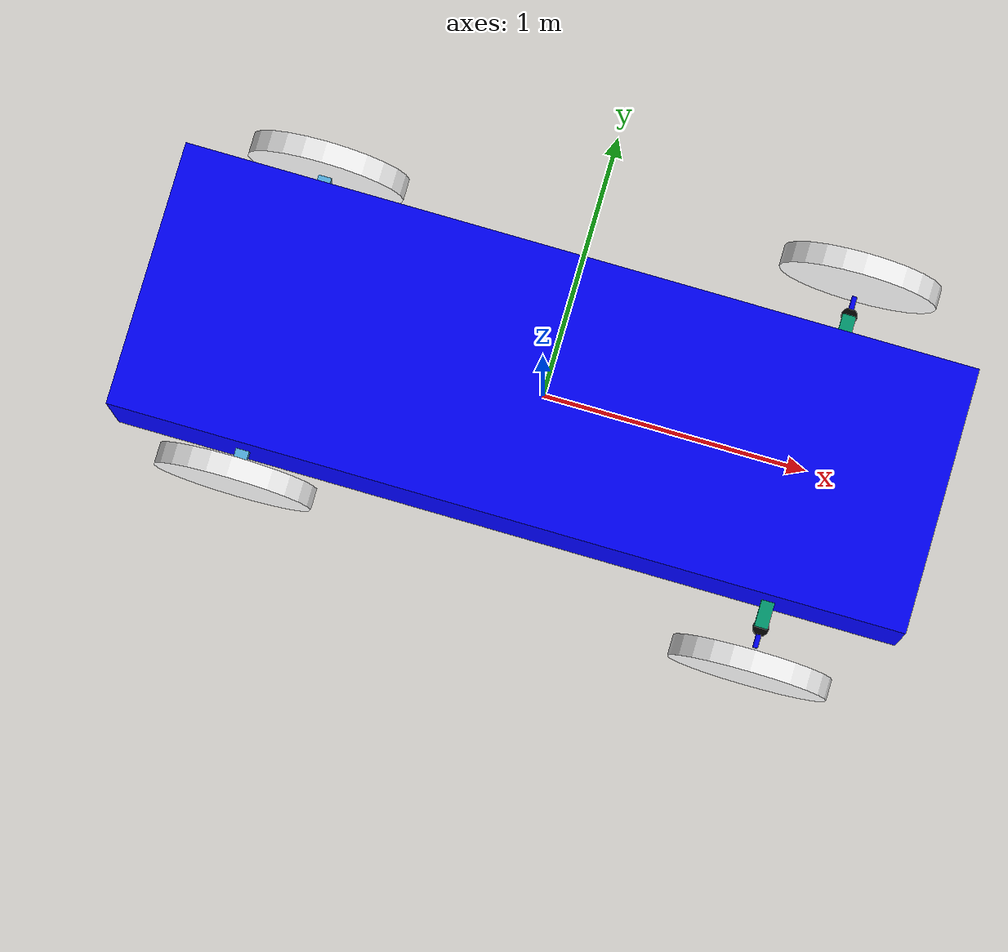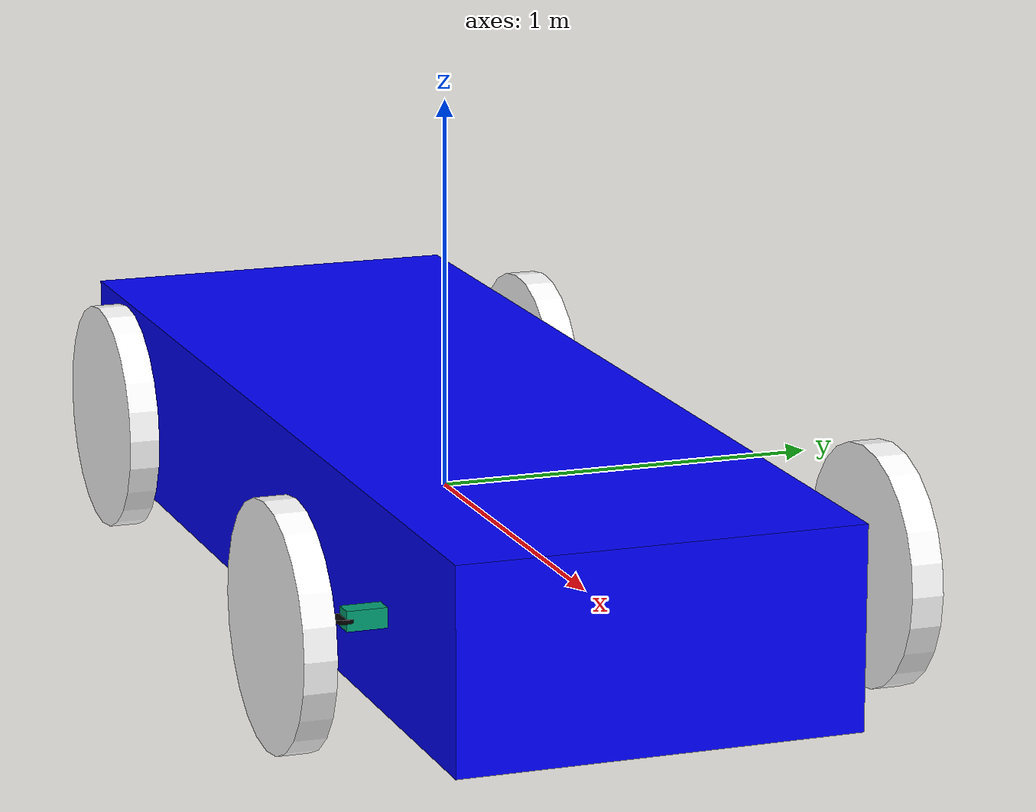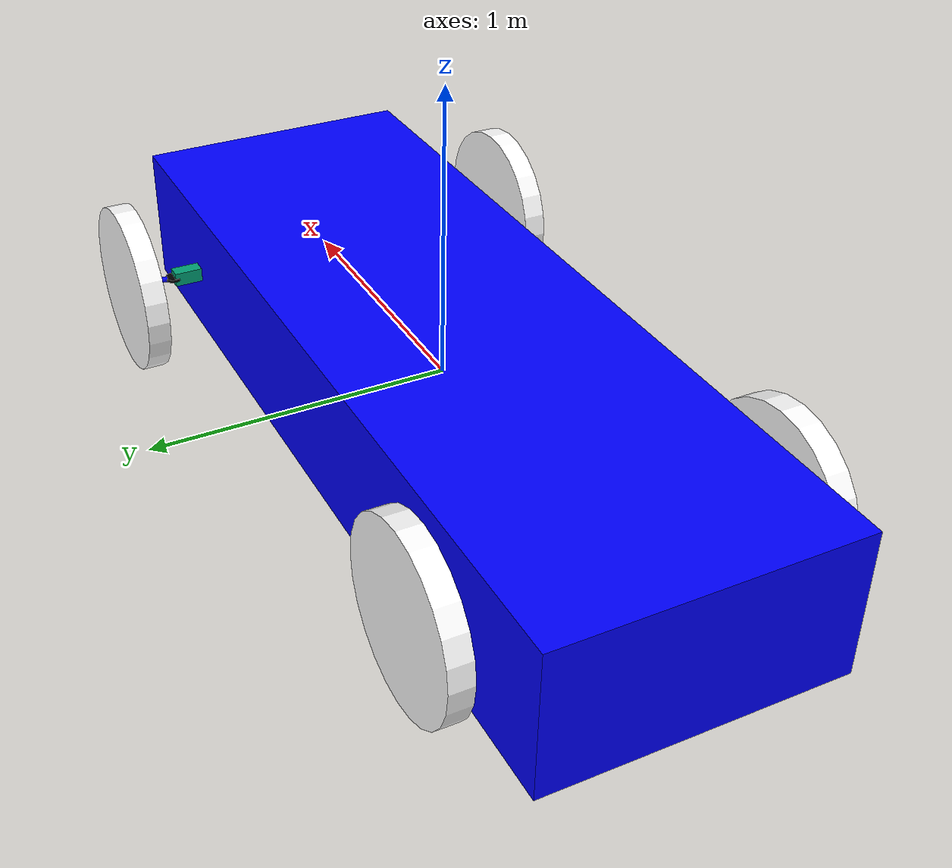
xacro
<?xml version="1.0"?>
<robot name="evrim4" xmlns:xacro="http://ros.org/wiki/xacro">

											<!-- DEGISKENLER -->

<xacro:property name="uzunluk" value="3.0" />
<xacro:property name="genislik" value="1.0" />
<xacro:property name="yukseklik" value="0.5" />
<xacro:property name="ta_uzunluk" value="0.05" /> <!-- Tasiyici uzunluk degeri -->
<xacro:property name="ta_genislik" value="1.2" />
<xacro:property name="ta_yukseklik" value="0.05" />
<xacro:property name="k_uzunluk" value="0.01" /> <!-- kramer uzunluk degeri -->
<xacro:property name="k_radius" value="0.03" />
<xacro:property name="te_uzunluk" value="0.08" />
<xacro:property name="te_radius" value="0.3" /> <!-- teker radius degeri -->
<xacro:property name="pi" value="3.1415" />

													<!-- RENKLER -->
	<material name="mavi">
		<color rgba="0 0 1 1"/>
	</material>
	<material name="siyah">
		<color rgba="1 1 1 1"/>
	</material>
	<material name="beyaz">
		<color rgba="0 0 0 1"/>
	</material>
												<!-- AGIRLIK GIRDISI -->
  <xacro:macro name="agirlik" params="mass">
    <inertial>
      <mass value="${mass}" />
      <inertia ixx="1.0" ixy="0.0" ixz="0.0" iyy="1.0" iyz="0.0" izz="1.0" />
    </inertial>
  </xacro:macro>

												<!-- ANA GOVDE -->

	<link name="ana_govde">
		<visual>
			<geometry>
				<box size="${uzunluk} ${genislik} ${yukseklik}"/>
			</geometry>
			<material name="mavi"/>
		</visual>
		<collision>
			<geometry>
				<box size="${uzunluk} ${genislik} ${yukseklik}"/>
			</geometry>
		</collision>
	  <xacro:agirlik mass="10"/>
	</link>
												<!-- ARKA TASIYICI -->
	<link name="arka_tasiyici">
		<visual>
			<geometry>
				<box size="${ta_uzunluk} ${ta_genislik} ${ta_yukseklik}"/>
			</geometry>
		</visual>
		<collision>
			<geometry>
				<box size="${ta_uzunluk} ${ta_genislik} ${ta_yukseklik}"/>
			</geometry>
		</collision>
	  <xacro:agirlik mass="3"/>
	</link>

	<joint name="arka_tasiyici_joint" type="fixed">
		<parent link="ana_govde"/>
		<child link="arka_tasiyici"/>
		<origin xyz="-1.0 0 -0.008"/>
	</joint>
												<!-- ON TASIYICI -->
	<link name="on_tasiyici">
		<visual>
			<geometry>
				<box size="${ta_uzunluk} ${ta_genislik} ${ta_yukseklik}"/>
			</geometry>
		</visual>
		<collision>
			<geometry>
				<box size="${ta_uzunluk} ${ta_genislik} ${ta_yukseklik}"/>
			</geometry>
		</collision>
	  <xacro:agirlik mass="3"/>
	</link>

	<joint name="on_tasiyici_joint" type="fixed">
		<parent link="ana_govde"/>
		<child link="on_tasiyici"/>
		<origin xyz="1.0 0 -0.008"/>
	</joint>
												<!-- ARKA TEKERLEK -->
														<!--  arka/on ,sol/sag, sol/sag konum degeri-->
  <xacro:macro name="teker" params="prefix suffix reflect">
    <link name="${prefix}_${suffix}_teker">
      <visual>
        <origin xyz="0 0 0" rpy="0 ${pi/2} ${pi/2}" />
        <geometry>
          <cylinder radius="${te_radius}" length="${te_uzunluk}"/>
        </geometry>
        <material name="siyah"/>
      </visual>
      <collision>
        <origin xyz="0 0 0" rpy="0 ${pi/2} ${pi/2}" />
        <geometry>
          <cylinder radius="${te_radius}" length="${te_uzunluk}"/>
        </geometry>
      </collision>
      <xacro:agirlik mass="2"/>
    </link>
    <joint name="${prefix}_${suffix}_teker_joint" type="continuous">
      <axis xyz="0 1 0" rpy="0 0 0" />
      <parent link="${prefix}_tasiyici"/>
      <child link="${prefix}_${suffix}_teker"/>
      <origin xyz="0 ${reflect*0.6} 0 " rpy="0 0 0"/>
    </joint>

    <gazebo reference="${prefix}_${suffix}_teker">
      <mu1 value="200.0"/>
      <mu2 value="100.0"/>
      <kp value="10000000.0"/>
      <kd value="1.0"/>
      <material>Gazebo/Grey</material>
    </gazebo>
  </xacro:macro>

  <xacro:teker prefix="arka" suffix="sol" reflect="1" />
  <xacro:teker prefix="arka" suffix="sag" reflect="-1" />

												<!-- KRAMER -->
												 <!-- on,arka joint, sol/sag, sol/sag konum -->
  <xacro:macro name="kramer" params="prefix suffix reflect">
    <link name="${suffix}_kramer">
      <visual>
        <geometry>
          <cylinder radius="${k_radius}" length="${k_uzunluk}"/>
        </geometry>
        <material name="beyaz"/>
      </visual>
      <collision>
        <geometry>
          <cylinder radius="${k_radius}" length="${k_uzunluk}"/>
        </geometry>
      </collision>
      <xacro:agirlik mass="1"/>
    </link>
    <joint name="${suffix}_kramer_joint" type="revolute">
      <axis xyz="0 0 1"/>
			<limit effort="1000.0" lower="-0.548" upper="0.548" velocity="0.8"/>
      <parent link="${prefix}_tasiyici"/>
      <child link="${suffix}_kramer"/>
      <origin xyz="0 ${reflect*0.6} 0 " rpy="0 0 0"/>
    </joint>

    <gazebo reference="${suffix}_kramer">
      <mu1 value="200.0"/>
      <mu2 value="100.0"/>
      <kp value="10000000.0"/>
      <kd value="1.0"/>
      <material>Gazebo/Grey</material>
    </gazebo>

    <transmission name="${suffix}_kramer_trans" >
      <type>transmission_interface/SimpleTransmission</type>
      <actuator name="${suffix}_kramer_motor">
        <mechanicalReduction>1</mechanicalReduction>
      </actuator>
      <joint name="${suffix}_kramer_joint">
        <hardwareInterface>PositionJointInterface</hardwareInterface>
      </joint>
    </transmission>

  </xacro:macro>

  <xacro:kramer prefix="on" suffix="sol" reflect="1" />
  <xacro:kramer prefix="on" suffix="sag" reflect="-1" />

<xacro:macro name="aks" params="suffix reflect">

								<!-- AKS -->
<link name="${suffix}_aks">
      <visual>
        <origin xyz="0 0 0" rpy="0 ${pi/2} ${pi/2}" />
        <geometry>
          <cylinder radius="0.01" length="0.05"/>
        </geometry>
        <material name="mavi"/>
      </visual>
      <collision>
        <origin xyz="0 0 0" rpy="0 ${pi/2} ${pi/2}" />
        <geometry>
          <cylinder radius="0.01" length="0.05"/>
        </geometry>
      </collision>
      <xacro:agirlik mass="2"/>
    </link>

    <joint name="${suffix}_aks_joint" type="continuous">
      <axis xyz="0 1 0" rpy="0 0 0" />
      <parent link="${suffix}_kramer"/>
      <child link="${suffix}_aks"/>
      <origin xyz="0 ${reflect*0.05} 0 " rpy="0 0 0"/>
    </joint>

    <gazebo reference="${suffix}_aks">
      <mu1 value="200.0"/>
      <mu2 value="100.0"/>
      <kp value="10000000.0"/>
      <kd value="1.0"/>
      <material>Gazebo/Grey</material>
    </gazebo>
</xacro:macro>

  <xacro:aks suffix="sol" reflect="1" />
  <xacro:aks suffix="sag" reflect="-1" />

														<!-- ON TEKERLEK -->
														 <!--  arka/on ,sol/sag, sol/sag(+/-) konum degeri-->
  <xacro:macro name="o_teker" params="prefix suffix reflect">

    <link name="${prefix}_${suffix}_teker">
      <visual>
        <origin xyz="0 0 0" rpy="0 ${pi/2} ${pi/2}" />
        <geometry>
          <cylinder radius="${te_radius}" length="${te_uzunluk}"/>
        </geometry>
        <material name="siyah"/>
      </visual>
      <collision>
        <origin xyz="0 0 0" rpy="0 ${pi/2} ${pi/2}" />
        <geometry>
          <cylinder radius="${te_radius}" length="${te_uzunluk}"/>
        </geometry>
      </collision>
      <xacro:agirlik mass="2"/>
    </link>

    <joint name="${prefix}_${suffix}_teker_joint" type="continuous">
      <axis xyz="0 1 0" rpy="0 0 0" />
      <parent link="${suffix}_aks"/>
      <child link="${prefix}_${suffix}_teker"/>
      <origin xyz="0 ${reflect*0.1} 0 " rpy="0 0 0"/>
    </joint>

    <gazebo reference="${prefix}_${suffix}_teker">
      <mu1 value="200.0"/>
      <mu2 value="100.0"/>
      <kp value="10000000.0"/>
      <kd value="1.0"/>
      <material>Gazebo/Grey</material>
    </gazebo>

    <transmission name="${prefix}_${suffix}_teker_trans">
      <type>transmission_interface/SimpleTransmission</type>
      <actuator name="${prefix}_${suffix}_teker_motor">
        <mechanicalReduction>1</mechanicalReduction>
      </actuator>
      <joint name="${prefix}_${suffix}_teker_joint">
				<hardwareInterface>VelocityJointInterface</hardwareInterface>
      </joint>
    </transmission>

  </xacro:macro>

  <xacro:o_teker prefix="on" suffix="sol" reflect="1" />
  <xacro:o_teker prefix="on" suffix="sag" reflect="-1" />

  <gazebo>
    <plugin name="gazebo_ros_control" filename="libgazebo_ros_control.so">
      <robotNamespace>/</robotNamespace>
      <legacyModeNS>true</legacyModeNS>
    </plugin>
  </gazebo>
</robot>
